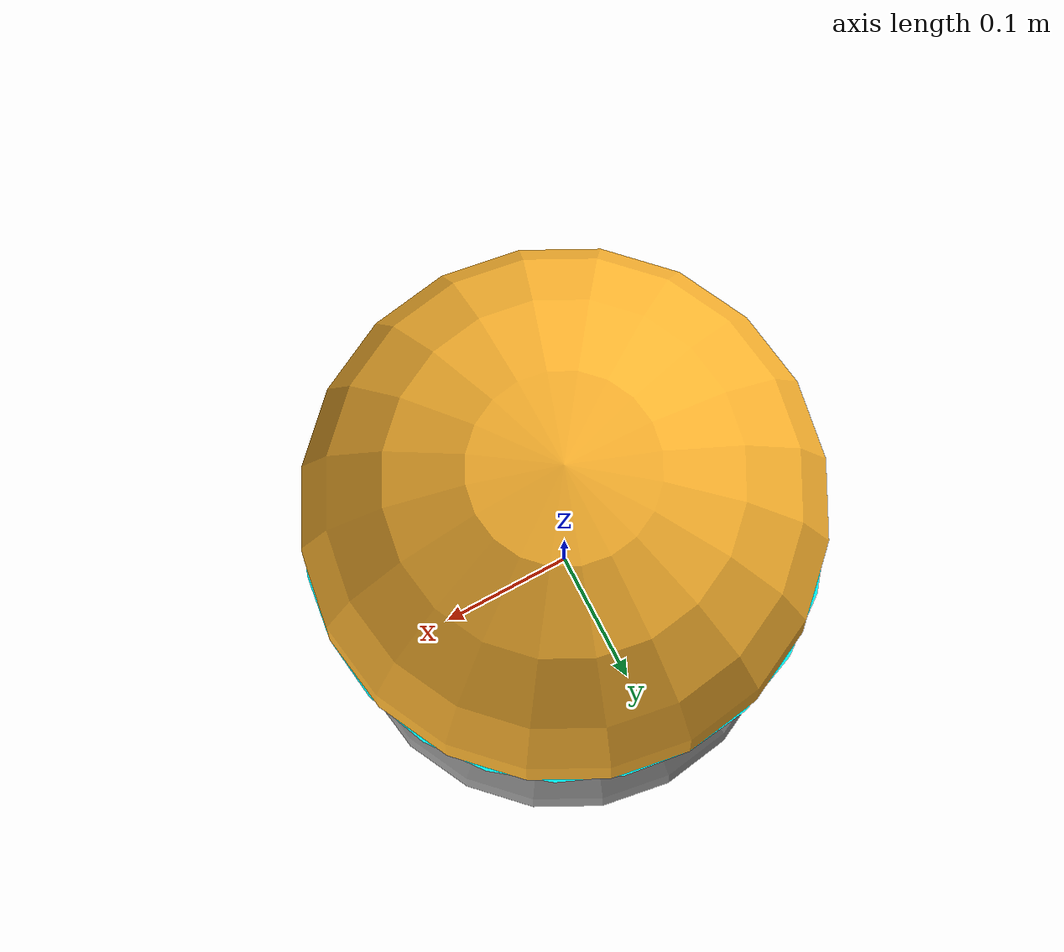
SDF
<?xml version="1.0" ?>
<sdf version='1.11'>
  <model name='ballbot'>
    <link name='chassis'>
      <inertial>
        <pose>0 0 -0.23636363636363639 0 0 0</pose>
        <mass>5.5</mass>
        <inertia>
          <ixx>0.48702060606060599</ixx>
          <ixy>0</ixy>
          <ixz>0</ixz>
          <iyy>0.45928727272727282</iyy>
          <iyz>7.8562139380718636e-18</iyz>
          <izz>0.094293333333333326</izz>
        </inertia>
      </inertial>
      <collision name='chassis_collision'>
        <pose>0 0 0 0 0 0</pose>
        <geometry>
          <cylinder>
            <length>0.40000000000000002</length>
            <radius>0.16</radius>
          </cylinder>
        </geometry>
      </collision>
      <collision name='chassis_fixed_joint_lump__head_collision_1'>
        <pose>0 0 0.20000000000000001 0 0 0</pose>
        <geometry>
          <sphere>
            <radius>0.16</radius>
          </sphere>
        </geometry>
      </collision>
      <visual name='chassis_visual'>
        <pose>0 0 0 0 0 0</pose>
        <geometry>
          <cylinder>
            <length>0.40000000000000002</length>
            <radius>0.16</radius>
          </cylinder>
        </geometry>
        <material>
          <diffuse>0 1 1 1</diffuse>
          <ambient>0 1 1 1</ambient>
        </material>
      </visual>
      <visual name='chassis_fixed_joint_lump__head_visual_1'>
        <pose>0 0 0.20000000000000001 0 0 0</pose>
        <geometry>
          <sphere>
            <radius>0.16</radius>
          </sphere>
        </geometry>
        <material>
          <diffuse>1 0.712499976 0.187500015 1</diffuse>
          <ambient>1 0.712499976 0.187500015 1</ambient>
        </material>
      </visual>
    </link>

    <joint name='ball_wheel_joint' type='ball'>
      <pose relative_to='chassis'>0 0 -0.20000000000000001 0 0 0</pose>
      <parent>chassis</parent>
      <child>ball_wheel</child>
    </joint>

    <link name='ball_wheel'>
      <pose relative_to='ball_wheel_joint'>0 0 0 0 0 0</pose>
      <inertial>
        <pose>0 0 0 0 0 0</pose>
        <mass>2</mass>
        <inertia>
          <ixx>0.032000000000000008</ixx>
          <ixy>0</ixy>
          <ixz>0</ixz>
          <iyy>0.032000000000000008</iyy>
          <iyz>0</iyz>
          <izz>0.032000000000000008</izz>
        </inertia>
      </inertial>
      <collision name='ball_wheel_collision'>
        <pose>0 0 0 0 0 0</pose>
        <geometry>
          <sphere>
            <radius>0.20000000000000001</radius>
          </sphere>
        </geometry>
      </collision>
      <visual name='ball_wheel_visual'>
        <pose>0 0 0 0 0 0</pose>
        <geometry>
          <sphere>
            <radius>0.20000000000000001</radius>
          </sphere>
        </geometry>
        <material>
          <diffuse>0.625 0.625 0.625 1</diffuse>
          <ambient>0.625 0.625 0.625 1</ambient>
        </material>
      </visual>
    </link>

    <frame name='base_joint' attached_to='chassis'>
      <pose>0 0 -0.40000000000000002 0 0 0</pose>
    </frame>

    <frame name='base_footprint' attached_to='base_joint'>
      <pose>0 0 0 0 0 0</pose>
    </frame>

    <frame name='head_joint' attached_to='chassis'>
      <pose>0 0 0.20000000000000001 0 0 0</pose>
    </frame>

    <frame name='head' attached_to='head_joint'>
      <pose>0 0 0 0 0 0</pose>
    </frame>

    <plugin
      filename="ignition-gazebo-diff-drive-system"
      name="ignition::gazebo::systems::DiffDrive">
      <left_joint>ball_wheel_joint</left_joint>
      <right_joint>ball_wheel_joint</right_joint>
      <wheel_separation>0.0001</wheel_separation>
      <wheel_radius>0.2</wheel_radius>
      <odom_publish_frequency>1</odom_publish_frequency>
      <max_linear_acceleration>1</max_linear_acceleration>
      <min_linear_acceleration>-1</min_linear_acceleration>
      <max_angular_acceleration>2</max_angular_acceleration>
      <min_angular_acceleration>-2</min_angular_acceleration>
      <max_linear_velocity>0.5</max_linear_velocity>
      <min_linear_velocity>-0.5</min_linear_velocity>
      <max_angular_velocity>1</max_angular_velocity>
      <min_angular_velocity>-1</min_angular_velocity>
    </plugin>

  </model>
</sdf>
